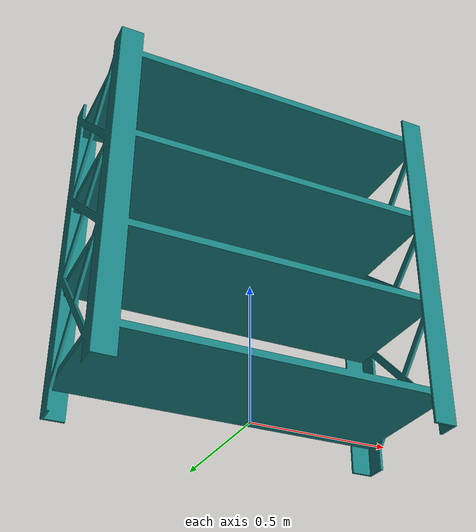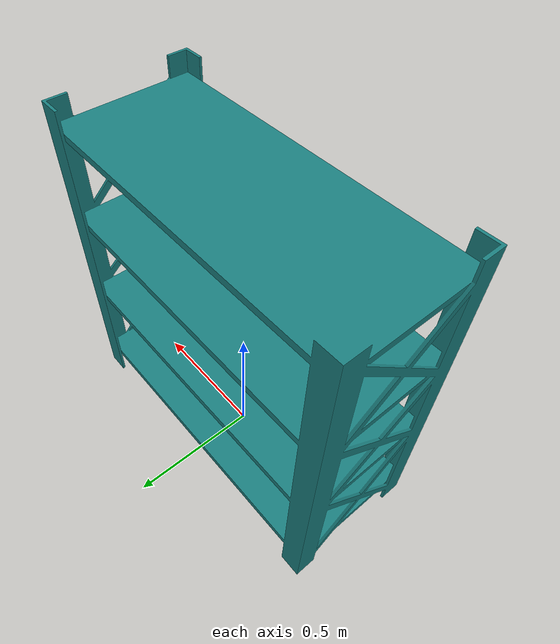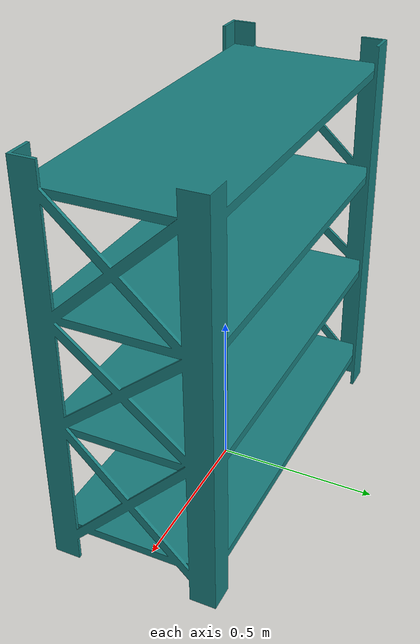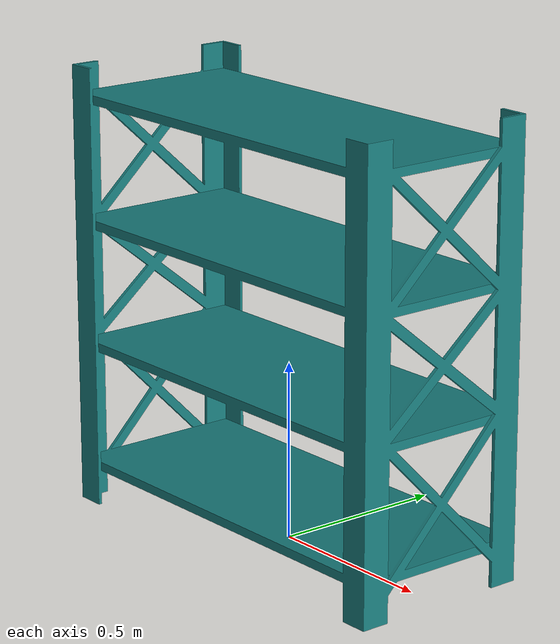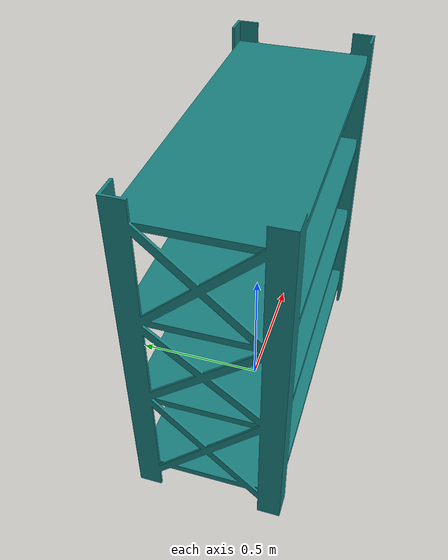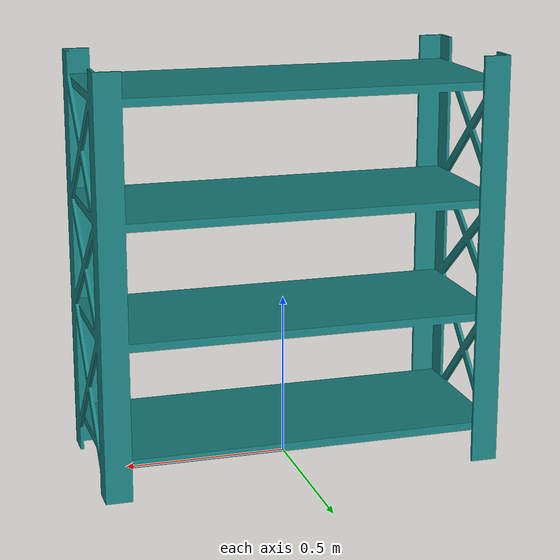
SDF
<?xml version='1.0'?>
<sdf version='1.6'>
  <model name='rack'>
    <static>true</static>
    <link name='link'>
      <visual name='visual'>
        <geometry>
          <mesh>
            <uri>model://rack/meshes/rack.stl</uri>
            <scale>0.01 0.01 0.01</scale>
          </mesh>
        </geometry>
        <material>
          <ambient>0.05 0.2 0.2 1</ambient>
          <diffuse>0.1 0.5 0.5 1</diffuse>
          <specular>0.1 0.3 0.3 1</specular>
        </material>
      </visual>

      <collision name='collision'>
        <geometry>
          <mesh>
            <uri>model://rack/meshes/rack.stl</uri>
            <scale>0.01 0.01 0.01</scale>
          </mesh>
        </geometry>
        <surface>
          <contact>
            <ode/>
          </contact>
          <bounce/>
          <friction>
            <ode/>
          </friction>
        </surface>
      </collision>
    </link>
  </model>
</sdf>
